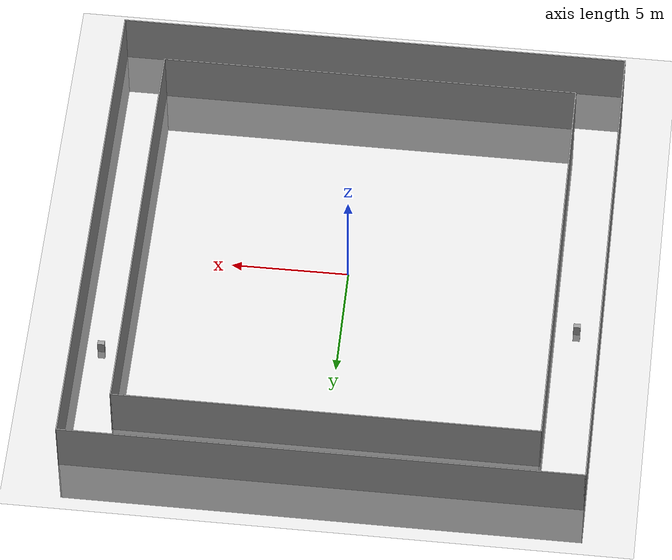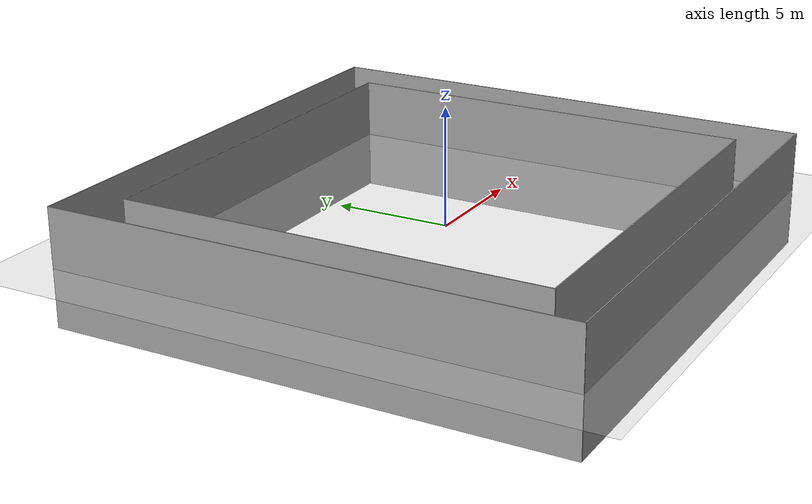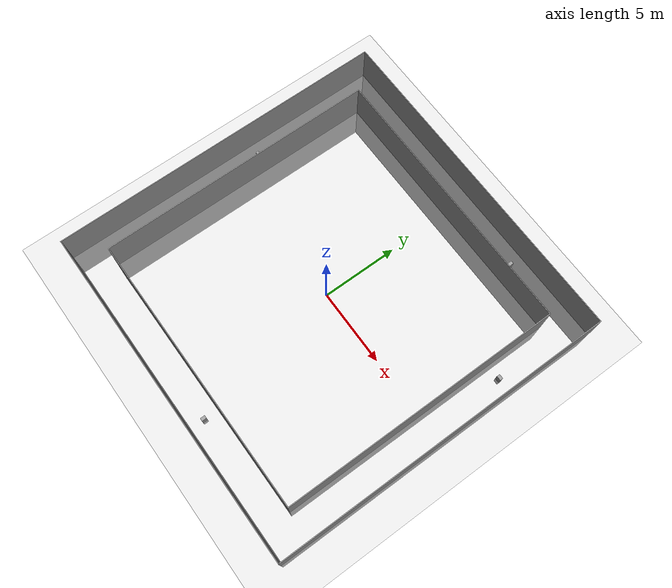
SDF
<sdf version="1.4">
 <world name="empty">
  <plugin name="ros_interface_plugin" filename="librotors_gazebo_ros_interface_plugin.so"/>
  <light name="sun" type="directional">
   <pose>0 0 10 0 -0 0</pose>
   <diffuse>0.8 0.8 0.8 1</diffuse>
   <specular>0.2 0.2 0.2 1</specular>
   <attenuation>
    <range>1000</range>
    <constant>0.9</constant>
    <linear>0.01</linear>
    <quadratic>0.001</quadratic>
   </attenuation>
   <direction>-0.5 0.1 -0.9</direction>
   <spot><inner_angle>0</inner_angle><outer_angle>0</outer_angle><falloff>0</falloff></spot>
  </light>
  <model name="ground_plane">
   <static>1</static>
   <link name="link">
    <collision name="collision">
     <geometry><plane><normal>0 0 1</normal><size>200 200</size></plane></geometry>
     <surface>
      <contact><collide_bitmask>65535</collide_bitmask></contact>
      <friction><ode><mu>100</mu><mu2>50</mu2></ode></friction>
     </surface>
    </collision>
    <visual name="visual">
     <cast_shadows>0</cast_shadows>
     <geometry><plane><normal>0 0 1</normal><size>100 100</size></plane></geometry>
     <material>
      <script><uri>file://media/materials/scripts/gazebo.material</uri><name>Gazebo/Grey</name></script>
     </material>
    </visual>
   </link>
  </model>
  <gravity>0 0 -9.8</gravity>
  <magnetic_field>6e-06 2.3e-05 -4.2e-05</magnetic_field>
  <atmosphere type="adiabatic"/>
  <physics type="ode">
   <max_step_size>0.001</max_step_size>
   <real_time_factor>1</real_time_factor>
   <real_time_update_rate>1000</real_time_update_rate>
  </physics>
  <scene><ambient>0.4 0.4 0.4 1</ambient><background>0.7 0.7 0.7 1</background><shadows>1</shadows></scene>
  <spherical_coordinates>
   <surface_model>EARTH_WGS84</surface_model>
   <latitude_deg>0</latitude_deg>
   <longitude_deg>0</longitude_deg>
   <elevation>0</elevation>
   <heading_deg>0</heading_deg>
  </spherical_coordinates>
  <model name="box_rpeaj">
   <pose>0 -9 0 0.0 0.0 0.0</pose>
   <link name="link">
    <inertial>
     <mass>1</mass>
     <inertia>
      <ixx>0.166667</ixx>
      <ixy>0</ixy>
      <ixz>0</ixz>
      <iyy>0.166667</iyy>
      <iyz>0</iyz>
      <izz>0.166667</izz>
     </inertia>
    </inertial>
    <collision name="collision"><geometry><box><size>18 0.05 5</size></box></geometry></collision>
    <visual name="visual">
     <geometry><box><size>18 0.05 5</size></box></geometry>
     <material>
      <script><name>Gazebo/Grey</name><uri>file://media/materials/scripts/gazebo.material</uri></script>
     </material>
    </visual>
   </link>
   <static>1</static>
  </model>
  <model name="box_cnaik">
   <pose>0 9 0 0.0 0.0 0.0</pose>
   <link name="link">
    <inertial>
     <mass>1</mass>
     <inertia>
      <ixx>0.166667</ixx>
      <ixy>0</ixy>
      <ixz>0</ixz>
      <iyy>0.166667</iyy>
      <iyz>0</iyz>
      <izz>0.166667</izz>
     </inertia>
    </inertial>
    <collision name="collision"><geometry><box><size>18 0.05 5</size></box></geometry></collision>
    <visual name="visual">
     <geometry><box><size>18 0.05 5</size></box></geometry>
     <material>
      <script><name>Gazebo/Grey</name><uri>file://media/materials/scripts/gazebo.material</uri></script>
     </material>
    </visual>
   </link>
   <static>1</static>
  </model>
  <model name="box_aofuf">
   <pose>9 0 0 0.0 0.0 1.5707963267948966</pose>
   <link name="link">
    <inertial>
     <mass>1</mass>
     <inertia>
      <ixx>0.166667</ixx>
      <ixy>0</ixy>
      <ixz>0</ixz>
      <iyy>0.166667</iyy>
      <iyz>0</iyz>
      <izz>0.166667</izz>
     </inertia>
    </inertial>
    <collision name="collision"><geometry><box><size>18.05 0.05 5</size></box></geometry></collision>
    <visual name="visual">
     <geometry><box><size>18.05 0.05 5</size></box></geometry>
     <material>
      <script><name>Gazebo/Grey</name><uri>file://media/materials/scripts/gazebo.material</uri></script>
     </material>
    </visual>
   </link>
   <static>1</static>
  </model>
  <model name="box_qszly">
   <pose>-9 0 0 0.0 0.0 1.5707963267948966</pose>
   <link name="link">
    <inertial>
     <mass>1</mass>
     <inertia>
      <ixx>0.166667</ixx>
      <ixy>0</ixy>
      <ixz>0</ixz>
      <iyy>0.166667</iyy>
      <iyz>0</iyz>
      <izz>0.166667</izz>
     </inertia>
    </inertial>
    <collision name="collision"><geometry><box><size>18.05 0.05 5</size></box></geometry></collision>
    <visual name="visual">
     <geometry><box><size>18.05 0.05 5</size></box></geometry>
     <material>
      <script><name>Gazebo/Grey</name><uri>file://media/materials/scripts/gazebo.material</uri></script>
     </material>
    </visual>
   </link>
   <static>1</static>
  </model>
  <model name="box_wwczv">
   <pose>0 -11 0 0.0 0.0 0.0</pose>
   <link name="link">
    <inertial>
     <mass>1</mass>
     <inertia>
      <ixx>0.166667</ixx>
      <ixy>0</ixy>
      <ixz>0</ixz>
      <iyy>0.166667</iyy>
      <iyz>0</iyz>
      <izz>0.166667</izz>
     </inertia>
    </inertial>
    <collision name="collision"><geometry><box><size>22 0.05 5</size></box></geometry></collision>
    <visual name="visual">
     <geometry><box><size>22 0.05 5</size></box></geometry>
     <material>
      <script><name>Gazebo/Grey</name><uri>file://media/materials/scripts/gazebo.material</uri></script>
     </material>
    </visual>
   </link>
   <static>1</static>
  </model>
  <model name="box_ddvtr">
   <pose>0 11 0 0.0 0.0 0.0</pose>
   <link name="link">
    <inertial>
     <mass>1</mass>
     <inertia>
      <ixx>0.166667</ixx>
      <ixy>0</ixy>
      <ixz>0</ixz>
      <iyy>0.166667</iyy>
      <iyz>0</iyz>
      <izz>0.166667</izz>
     </inertia>
    </inertial>
    <collision name="collision"><geometry><box><size>22 0.05 5</size></box></geometry></collision>
    <visual name="visual">
     <geometry><box><size>22 0.05 5</size></box></geometry>
     <material>
      <script><name>Gazebo/Grey</name><uri>file://media/materials/scripts/gazebo.material</uri></script>
     </material>
    </visual>
   </link>
   <static>1</static>
  </model>
  <model name="box_sgcba">
   <pose>11 0 0 0.0 0.0 1.5707963267948966</pose>
   <link name="link">
    <inertial>
     <mass>1</mass>
     <inertia>
      <ixx>0.166667</ixx>
      <ixy>0</ixy>
      <ixz>0</ixz>
      <iyy>0.166667</iyy>
      <iyz>0</iyz>
      <izz>0.166667</izz>
     </inertia>
    </inertial>
    <collision name="collision"><geometry><box><size>22.05 0.05 5</size></box></geometry></collision>
    <visual name="visual">
     <geometry><box><size>22.05 0.05 5</size></box></geometry>
     <material>
      <script><name>Gazebo/Grey</name><uri>file://media/materials/scripts/gazebo.material</uri></script>
     </material>
    </visual>
   </link>
   <static>1</static>
  </model>
  <model name="box_wjhzo">
   <pose>-11 0 0 0.0 0.0 1.5707963267948966</pose>
   <link name="link">
    <inertial>
     <mass>1</mass>
     <inertia>
      <ixx>0.166667</ixx>
      <ixy>0</ixy>
      <ixz>0</ixz>
      <iyy>0.166667</iyy>
      <iyz>0</iyz>
      <izz>0.166667</izz>
     </inertia>
    </inertial>
    <collision name="collision"><geometry><box><size>22.05 0.05 5</size></box></geometry></collision>
    <visual name="visual">
     <geometry><box><size>22.05 0.05 5</size></box></geometry>
     <material>
      <script><name>Gazebo/Grey</name><uri>file://media/materials/scripts/gazebo.material</uri></script>
     </material>
    </visual>
   </link>
   <static>1</static>
  </model>
  <model name="box_ntlvt">
   <pose>10.0 5.0 0.0 0.0 0.0 0.0</pose>
   <link name="link">
    <inertial>
     <mass>1</mass>
     <inertia>
      <ixx>0.166667</ixx>
      <ixy>0</ixy>
      <ixz>0</ixz>
      <iyy>0.166667</iyy>
      <iyz>0</iyz>
      <izz>0.166667</izz>
     </inertia>
    </inertial>
    <collision name="collision"><geometry><box><size>0.3 0.2 1</size></box></geometry></collision>
    <visual name="visual">
     <geometry><box><size>0.3 0.2 1</size></box></geometry>
     <material>
      <script><name>Gazebo/Grey</name><uri>file://media/materials/scripts/gazebo.material</uri></script>
     </material>
    </visual>
   </link>
   <static>1</static>
  </model>
  <model name="box_ypgpj">
   <pose>2.0 -10.0 0.0 0.0 0.0 1.5707963267948966</pose>
   <link name="link">
    <inertial>
     <mass>1</mass>
     <inertia>
      <ixx>0.166667</ixx>
      <ixy>0</ixy>
      <ixz>0</ixz>
      <iyy>0.166667</iyy>
      <iyz>0</iyz>
      <izz>0.166667</izz>
     </inertia>
    </inertial>
    <collision name="collision"><geometry><box><size>0.3 0.2 1</size></box></geometry></collision>
    <visual name="visual">
     <geometry><box><size>0.3 0.2 1</size></box></geometry>
     <material>
      <script><name>Gazebo/Grey</name><uri>file://media/materials/scripts/gazebo.material</uri></script>
     </material>
    </visual>
   </link>
   <static>1</static>
  </model>
  <model name="box_toqvd">
   <pose>-10.0 2.0 0.0 0.0 0.0 0.0</pose>
   <link name="link">
    <inertial>
     <mass>1</mass>
     <inertia>
      <ixx>0.166667</ixx>
      <ixy>0</ixy>
      <ixz>0</ixz>
      <iyy>0.166667</iyy>
      <iyz>0</iyz>
      <izz>0.166667</izz>
     </inertia>
    </inertial>
    <collision name="collision"><geometry><box><size>0.3 0.2 1</size></box></geometry></collision>
    <visual name="visual">
     <geometry><box><size>0.3 0.2 1</size></box></geometry>
     <material>
      <script><name>Gazebo/Grey</name><uri>file://media/materials/scripts/gazebo.material</uri></script>
     </material>
    </visual>
   </link>
   <static>1</static>
  </model>
  <model name="box_ganhv">
   <pose>5.0 10.0 0.0 0.0 0.0 1.5707963267948966</pose>
   <link name="link">
    <inertial>
     <mass>1</mass>
     <inertia>
      <ixx>0.166667</ixx>
      <ixy>0</ixy>
      <ixz>0</ixz>
      <iyy>0.166667</iyy>
      <iyz>0</iyz>
      <izz>0.166667</izz>
     </inertia>
    </inertial>
    <collision name="collision"><geometry><box><size>0.3 0.2 1</size></box></geometry></collision>
    <visual name="visual">
     <geometry><box><size>0.3 0.2 1</size></box></geometry>
     <material>
      <script><name>Gazebo/Grey</name><uri>file://media/materials/scripts/gazebo.material</uri></script>
     </material>
    </visual>
   </link>
   <static>1</static>
  </model>
 </world>
</sdf>
